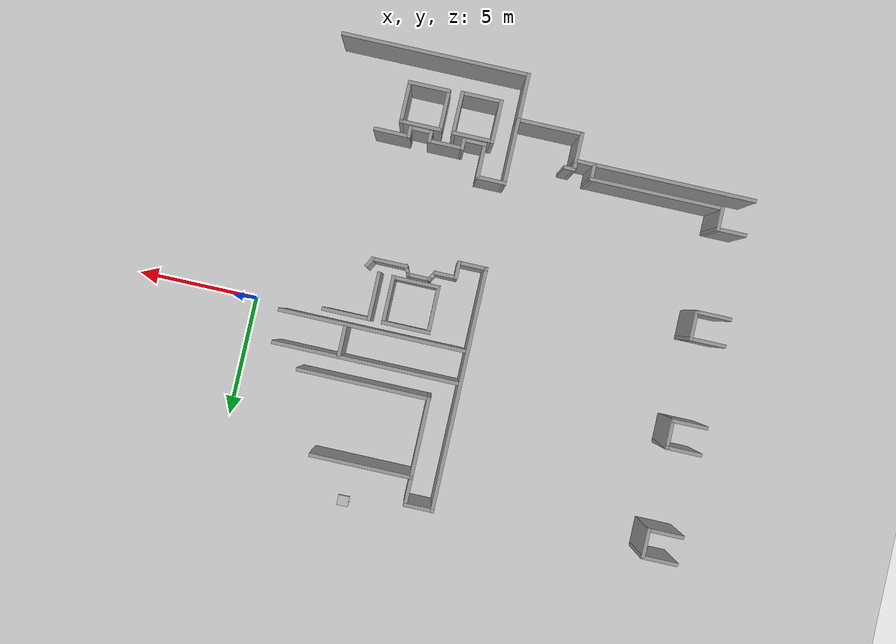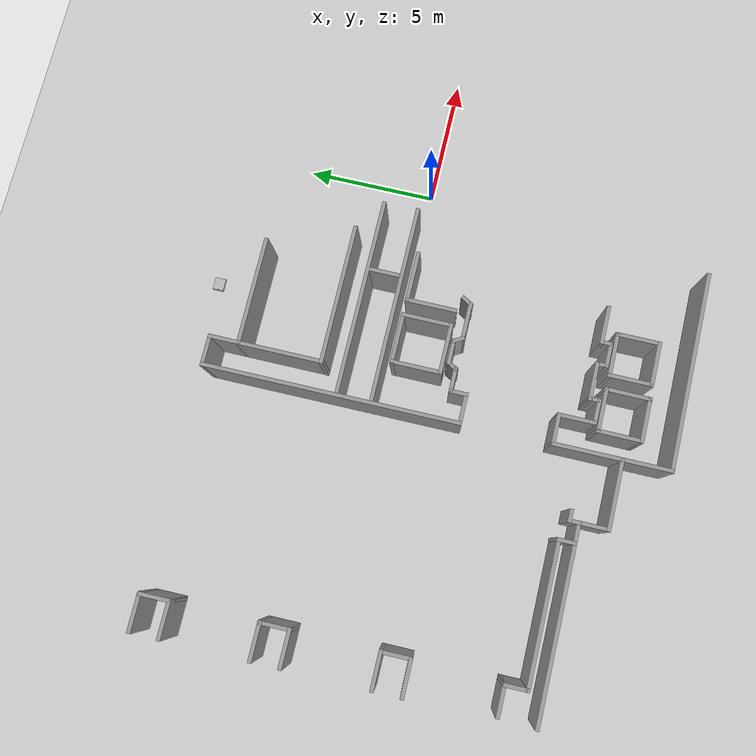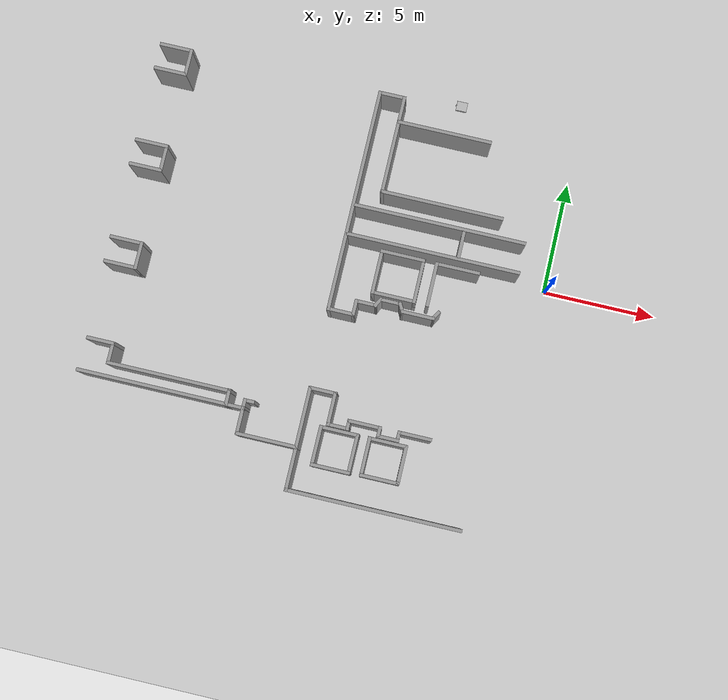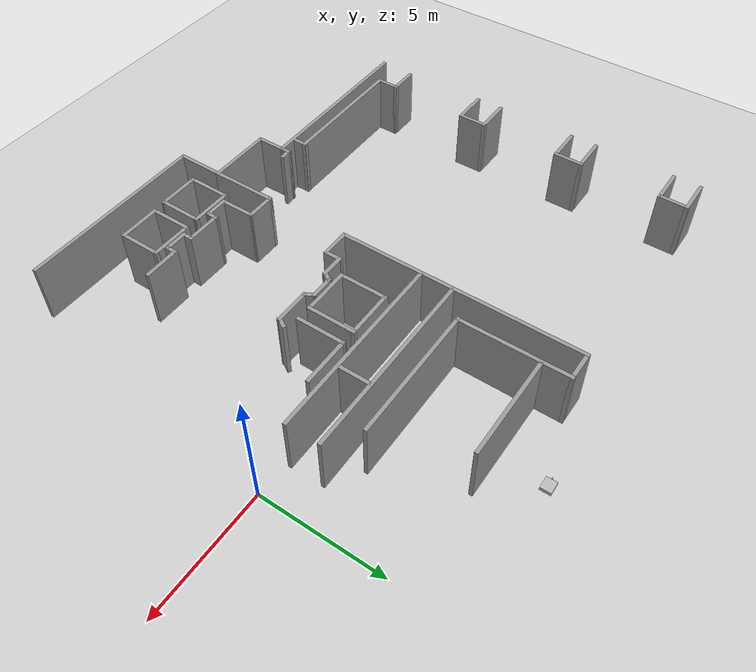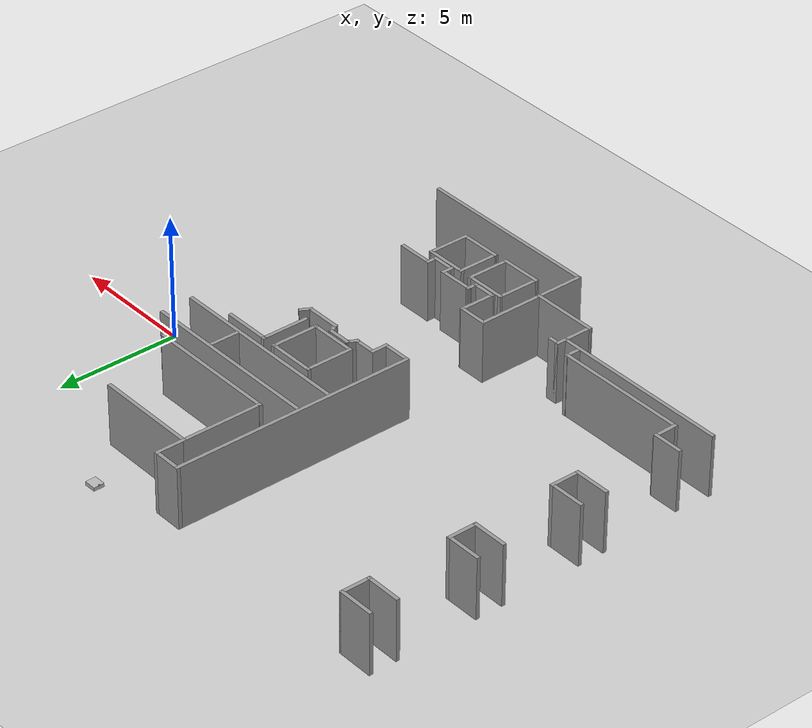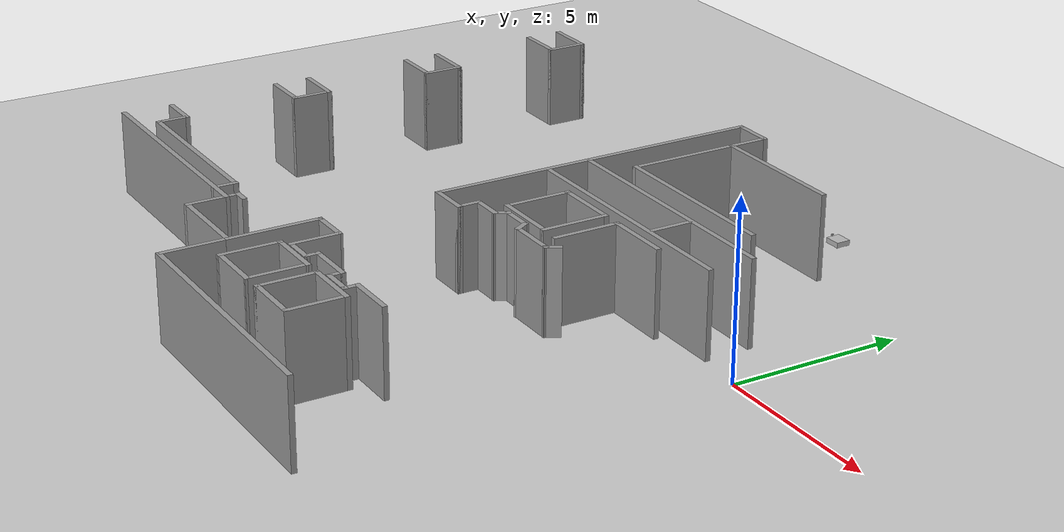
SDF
<sdf version="1.7">
 <world name="default">
  <model name="ground_plane">
   <static>1</static>
   <link name="link">
    <collision name="collision">
     <geometry><plane><normal>0 0 1</normal><size>100 100</size></plane></geometry>
     <surface>
      <contact><collide_bitmask>65535</collide_bitmask></contact>
      <friction><ode><mu>100</mu><mu2>50</mu2></ode></friction>
     </surface>
    </collision>
    <visual name="visual">
     <cast_shadows>0</cast_shadows>
     <geometry><plane><normal>0 0 1</normal><size>100 100</size></plane></geometry>
     <material>
      <script><uri>file://media/materials/scripts/gazebo.material</uri><name>Gazebo/Grey</name></script>
     </material>
    </visual>
   </link>
  </model>
  <model name="Tsudanuma_2-3-without_door">
   <pose>11.8595 12.3796 0 0 -0 0</pose>
   <link name="Wall_1">
    <collision name="Wall_1_Collision">
     <geometry><box><size>7.45363 0.15 2.5</size></box></geometry>
     <pose>0 0 1.25 0 -0 0</pose>
    </collision>
    <visual name="Wall_1_Visual">
     <pose>0 0 1.25 0 -0 0</pose>
     <geometry><box><size>7.45363 0.15 2.5</size></box></geometry>
     <material>
      <script><uri>file://media/materials/scripts/gazebo.material</uri><name>Gazebo/Grey</name></script>
      <ambient>1 1 1 1</ambient>
     </material>
     <meta><layer>0</layer></meta>
    </visual>
    <pose>-27.1739 -20.5586 0 0 -0 -0.00039</pose>
   </link>
   <link name="Wall_140">
    <collision name="Wall_140_Collision">
     <geometry><box><size>4.25 0.15 2.5</size></box></geometry>
     <pose>0 0 1.25 0 -0 0</pose>
    </collision>
    <visual name="Wall_140_Visual">
     <pose>0 0 1.25 0 -0 0</pose>
     <geometry><box><size>4.25 0.15 2.5</size></box></geometry>
     <material>
      <script><uri>file://media/materials/scripts/gazebo.material</uri><name>Gazebo/Grey</name></script>
      <ambient>1 1 1 1</ambient>
     </material>
     <meta><layer>0</layer></meta>
    </visual>
    <pose>-17.8074 -6.80767 0 0 -0 3.14159</pose>
   </link>
   <link name="Wall_141">
    <collision name="Wall_141_Collision">
     <geometry><box><size>1.25 0.15 2.5</size></box></geometry>
     <pose>0 0 1.25 0 -0 0</pose>
    </collision>
    <visual name="Wall_141_Visual">
     <pose>0 0 1.25 0 -0 0</pose>
     <geometry><box><size>1.25 0.15 2.5</size></box></geometry>
     <material>
      <script><uri>file://media/materials/scripts/gazebo.material</uri><name>Gazebo/Grey</name></script>
      <ambient>1 1 1 1</ambient>
     </material>
     <meta><layer>0</layer></meta>
    </visual>
    <pose>-19.8574 -6.25767 0 0 -0 1.5708</pose>
   </link>
   <link name="Wall_142">
    <collision name="Wall_142_Collision">
     <geometry><box><size>1.25 0.15 2.5</size></box></geometry>
     <pose>0 0 1.25 0 -0 0</pose>
    </collision>
    <visual name="Wall_142_Visual">
     <pose>0 0 1.25 0 -0 0</pose>
     <geometry><box><size>1.25 0.15 2.5</size></box></geometry>
     <material>
      <script><uri>file://media/materials/scripts/gazebo.material</uri><name>Gazebo/Grey</name></script>
      <ambient>1 1 1 1</ambient>
     </material>
     <meta><layer>0</layer></meta>
    </visual>
    <pose>-20.4074 -5.70767 0 0 -0 3.14159</pose>
   </link>
   <link name="Wall_143">
    <collision name="Wall_143_Collision">
     <geometry><box><size>10 0.15 2.5</size></box></geometry>
     <pose>0 0 1.25 0 -0 0</pose>
    </collision>
    <visual name="Wall_143_Visual">
     <pose>0 0 1.25 0 -0 0</pose>
     <geometry><box><size>10 0.15 2.5</size></box></geometry>
     <material>
      <script><uri>file://media/materials/scripts/gazebo.material</uri><name>Gazebo/Grey</name></script>
      <ambient>1 1 1 1</ambient>
     </material>
     <meta><layer>0</layer></meta>
    </visual>
    <pose>-20.9574 -10.6327 0 0 -0 -1.5708</pose>
   </link>
   <link name="Wall_144">
    <collision name="Wall_144_Collision">
     <geometry><box><size>1.25 0.15 2.5</size></box></geometry>
     <pose>0 0 1.25 0 -0 0</pose>
    </collision>
    <visual name="Wall_144_Visual">
     <pose>0 0 1.25 0 -0 0</pose>
     <geometry><box><size>1.25 0.15 2.5</size></box></geometry>
     <material>
      <script><uri>file://media/materials/scripts/gazebo.material</uri><name>Gazebo/Grey</name></script>
      <ambient>1 1 1 1</ambient>
     </material>
     <meta><layer>0</layer></meta>
    </visual>
    <pose>-20.4074 -15.5577 0 0 -0 0</pose>
   </link>
   <link name="Wall_145">
    <collision name="Wall_145_Collision">
     <geometry><box><size>0.75 0.15 2.5</size></box></geometry>
     <pose>0 0 1.25 0 -0 0</pose>
    </collision>
    <visual name="Wall_145_Visual">
     <pose>0 0 1.25 0 -0 0</pose>
     <geometry><box><size>0.75 0.15 2.5</size></box></geometry>
     <material>
      <script><uri>file://media/materials/scripts/gazebo.material</uri><name>Gazebo/Grey</name></script>
      <ambient>1 1 1 1</ambient>
     </material>
     <meta><layer>0</layer></meta>
    </visual>
    <pose>-19.8574 -15.2577 0 0 -0 1.5708</pose>
   </link>
   <link name="Wall_146">
    <collision name="Wall_146_Collision">
     <geometry><box><size>1 0.15 2.5</size></box></geometry>
     <pose>0 0 1.25 0 -0 0</pose>
    </collision>
    <visual name="Wall_146_Visual">
     <pose>0 0 1.25 0 -0 0</pose>
     <geometry><box><size>1 0.15 2.5</size></box></geometry>
     <material>
      <script><uri>file://media/materials/scripts/gazebo.material</uri><name>Gazebo/Grey</name></script>
      <ambient>1 1 1 1</ambient>
     </material>
     <meta><layer>0</layer></meta>
    </visual>
    <pose>-19.4324 -14.9577 0 0 -0 0</pose>
   </link>
   <link name="Wall_147">
    <collision name="Wall_147_Collision">
     <geometry><box><size>0.5 0.15 2.5</size></box></geometry>
     <pose>0 0 1.25 0 -0 0</pose>
    </collision>
    <visual name="Wall_147_Visual">
     <pose>0 0 1.25 0 -0 0</pose>
     <geometry><box><size>0.5 0.15 2.5</size></box></geometry>
     <material>
      <script><uri>file://media/materials/scripts/gazebo.material</uri><name>Gazebo/Grey</name></script>
      <ambient>1 1 1 1</ambient>
     </material>
     <meta><layer>0</layer></meta>
    </visual>
    <pose>-18.9199 -14.8061 0 0 -0 1.0472</pose>
   </link>
   <link name="Wall_148">
    <collision name="Wall_148_Collision">
     <geometry><box><size>1 0.15 2.5</size></box></geometry>
     <pose>0 0 1.25 0 -0 0</pose>
    </collision>
    <visual name="Wall_148_Visual">
     <pose>0 0 1.25 0 -0 0</pose>
     <geometry><box><size>1 0.15 2.5</size></box></geometry>
     <material>
      <script><uri>file://media/materials/scripts/gazebo.material</uri><name>Gazebo/Grey</name></script>
      <ambient>1 1 1 1</ambient>
     </material>
     <meta><layer>0</layer></meta>
    </visual>
    <pose>-18.4074 -14.6546 0 0 -0 0</pose>
   </link>
   <link name="Wall_149">
    <collision name="Wall_149_Collision">
     <geometry><box><size>0.5 0.15 2.5</size></box></geometry>
     <pose>0 0 1.25 0 -0 0</pose>
    </collision>
    <visual name="Wall_149_Visual">
     <pose>0 0 1.25 0 -0 0</pose>
     <geometry><box><size>0.5 0.15 2.5</size></box></geometry>
     <material>
      <script><uri>file://media/materials/scripts/gazebo.material</uri><name>Gazebo/Grey</name></script>
      <ambient>1 1 1 1</ambient>
     </material>
     <meta><layer>0</layer></meta>
    </visual>
    <pose>-17.8949 -14.8061 0 0 -0 -1.0472</pose>
   </link>
   <link name="Wall_150">
    <collision name="Wall_150_Collision">
     <geometry><box><size>1.5 0.15 2.5</size></box></geometry>
     <pose>0 0 1.25 0 -0 0</pose>
    </collision>
    <visual name="Wall_150_Visual">
     <pose>0 0 1.25 0 -0 0</pose>
     <geometry><box><size>1.5 0.15 2.5</size></box></geometry>
     <material>
      <script><uri>file://media/materials/scripts/gazebo.material</uri><name>Gazebo/Grey</name></script>
      <ambient>1 1 1 1</ambient>
     </material>
     <meta><layer>0</layer></meta>
    </visual>
    <pose>-17.1324 -14.9577 0 0 -0 0</pose>
   </link>
   <link name="Wall_151">
    <collision name="Wall_151_Collision">
     <geometry><box><size>0.5 0.15 2.5</size></box></geometry>
     <pose>0 0 1.25 0 -0 0</pose>
    </collision>
    <visual name="Wall_151_Visual">
     <pose>0 0 1.25 0 -0 0</pose>
     <geometry><box><size>0.5 0.15 2.5</size></box></geometry>
     <material>
      <script><uri>file://media/materials/scripts/gazebo.material</uri><name>Gazebo/Grey</name></script>
      <ambient>1 1 1 1</ambient>
     </material>
     <meta><layer>0</layer></meta>
    </visual>
    <pose>-16.3699 -14.8061 0 0 -0 1.0472</pose>
   </link>
   <link name="Wall_160">
    <collision name="Wall_160_Collision">
     <geometry><box><size>5.5 0.15 2.5</size></box></geometry>
     <pose>0 0 1.25 0 -0 0</pose>
    </collision>
    <visual name="Wall_160_Visual">
     <pose>0 0 1.25 0 -0 0</pose>
     <geometry><box><size>5.5 0.15 2.5</size></box></geometry>
     <material>
      <script><uri>file://media/materials/scripts/gazebo.material</uri><name>Gazebo/Grey</name></script>
      <ambient>1 1 1 1</ambient>
     </material>
     <meta><layer>0</layer></meta>
    </visual>
    <pose>-17.1919 -10.0068 0 0 -0 3.14159</pose>
   </link>
   <link name="Wall_161">
    <collision name="Wall_161_Collision">
     <geometry><box><size>3.34921 0.15 2.5</size></box></geometry>
     <pose>0 0 1.25 0 -0 0</pose>
    </collision>
    <visual name="Wall_161_Visual">
     <pose>0 0 1.25 0 -0 0</pose>
     <geometry><box><size>3.34921 0.15 2.5</size></box></geometry>
     <material>
      <script><uri>file://media/materials/scripts/gazebo.material</uri><name>Gazebo/Grey</name></script>
      <ambient>1 1 1 1</ambient>
     </material>
     <meta><layer>0</layer></meta>
    </visual>
    <pose>-19.8574 -8.40721 0 0 -0 1.5708</pose>
   </link>
   <link name="Wall_165">
    <collision name="Wall_165_Collision">
     <geometry><box><size>7.7 0.15 2.5</size></box></geometry>
     <pose>0 0 1.25 0 -0 0</pose>
    </collision>
    <visual name="Wall_165_Visual">
     <pose>0 0 1.25 0 -0 0</pose>
     <geometry><box><size>7.7 0.15 2.5</size></box></geometry>
     <material>
      <script><uri>file://media/materials/scripts/gazebo.material</uri><name>Gazebo/Grey</name></script>
      <ambient>1 1 1 1</ambient>
     </material>
     <meta><layer>0</layer></meta>
    </visual>
    <pose>-17.1019 -10.8525 0 0 -0 0</pose>
   </link>
   <link name="Wall_167">
    <collision name="Wall_167_Collision">
     <geometry><box><size>7.75 0.15 2.5</size></box></geometry>
     <pose>0 0 1.25 0 -0 0</pose>
    </collision>
    <visual name="Wall_167_Visual">
     <pose>0 0 1.25 0 -0 0</pose>
     <geometry><box><size>7.75 0.15 2.5</size></box></geometry>
     <material>
      <script><uri>file://media/materials/scripts/gazebo.material</uri><name>Gazebo/Grey</name></script>
      <ambient>1 1 1 1</ambient>
     </material>
     <meta><layer>0</layer></meta>
    </visual>
    <pose>-17.0935 -12.1708 0 0 -0 0</pose>
   </link>
   <link name="Wall_169">
    <collision name="Wall_169_Collision">
     <geometry><box><size>1.25 0.15 2.5</size></box></geometry>
     <pose>0 0 1.25 0 -0 0</pose>
    </collision>
    <visual name="Wall_169_Visual">
     <pose>0 0 1.25 0 -0 0</pose>
     <geometry><box><size>1.25 0.15 2.5</size></box></geometry>
     <material>
      <script><uri>file://media/materials/scripts/gazebo.material</uri><name>Gazebo/Grey</name></script>
      <ambient>1 1 1 1</ambient>
     </material>
     <meta><layer>0</layer></meta>
    </visual>
    <pose>-15.9785 -11.4951 0 0 -0 -1.5708</pose>
   </link>
   <link name="Wall_176">
    <collision name="Wall_176_Collision">
     <geometry><box><size>2.75 0.15 2.5</size></box></geometry>
     <pose>0 0 1.25 0 -0 0</pose>
    </collision>
    <visual name="Wall_176_Visual">
     <pose>0 0 1.25 0 -0 0</pose>
     <geometry><box><size>2.75 0.15 2.5</size></box></geometry>
     <material>
      <script><uri>file://media/materials/scripts/gazebo.material</uri><name>Gazebo/Grey</name></script>
      <ambient>1 1 1 1</ambient>
     </material>
     <meta><layer>0</layer></meta>
    </visual>
    <pose>-20.9221 -20.36 0 0 -0 1.5708</pose>
   </link>
   <link name="Wall_177">
    <collision name="Wall_177_Collision">
     <geometry><box><size>1.25 0.15 2.5</size></box></geometry>
     <pose>0 0 1.25 0 -0 0</pose>
    </collision>
    <visual name="Wall_177_Visual">
     <pose>0 0 1.25 0 -0 0</pose>
     <geometry><box><size>1.25 0.15 2.5</size></box></geometry>
     <material>
      <script><uri>file://media/materials/scripts/gazebo.material</uri><name>Gazebo/Grey</name></script>
      <ambient>1 1 1 1</ambient>
     </material>
     <meta><layer>0</layer></meta>
    </visual>
    <pose>-20.3721 -19.06 0 0 -0 0</pose>
   </link>
   <link name="Wall_178">
    <collision name="Wall_178_Collision">
     <geometry><box><size>1.49235 0.15 2.5</size></box></geometry>
     <pose>0 0 1.25 0 -0 0</pose>
    </collision>
    <visual name="Wall_178_Visual">
     <pose>0 0 1.25 0 -0 0</pose>
     <geometry><box><size>1.49235 0.15 2.5</size></box></geometry>
     <material>
      <script><uri>file://media/materials/scripts/gazebo.material</uri><name>Gazebo/Grey</name></script>
      <ambient>1 1 1 1</ambient>
     </material>
     <meta><layer>0</layer></meta>
    </visual>
    <pose>-19.8214 -19.7312 0 0 -0 -1.56976</pose>
   </link>
   <link name="Wall_179">
    <collision name="Wall_179_Collision">
     <geometry><box><size>1 0.15 2.5</size></box></geometry>
     <pose>0 0 1.25 0 -0 0</pose>
    </collision>
    <visual name="Wall_179_Visual">
     <pose>0 0 1.25 0 -0 0</pose>
     <geometry><box><size>1 0.15 2.5</size></box></geometry>
     <material>
      <script><uri>file://media/materials/scripts/gazebo.material</uri><name>Gazebo/Grey</name></script>
      <ambient>1 1 1 1</ambient>
     </material>
     <meta><layer>0</layer></meta>
    </visual>
    <pose>-19.3957 -20.4038 0 0 -0 0</pose>
   </link>
   <link name="Wall_180">
    <collision name="Wall_180_Collision">
     <geometry><box><size>0.492355 0.15 2.5</size></box></geometry>
     <pose>0 0 1.25 0 -0 0</pose>
    </collision>
    <visual name="Wall_180_Visual">
     <pose>0 0 1.25 0 -0 0</pose>
     <geometry><box><size>0.492355 0.15 2.5</size></box></geometry>
     <material>
      <script><uri>file://media/materials/scripts/gazebo.material</uri><name>Gazebo/Grey</name></script>
      <ambient>1 1 1 1</ambient>
     </material>
     <meta><layer>0</layer></meta>
    </visual>
    <pose>-18.9714 -20.2312 0 0 -0 1.57485</pose>
   </link>
   <link name="Wall_181">
    <collision name="Wall_181_Collision">
     <geometry><box><size>1.5 0.15 2.5</size></box></geometry>
     <pose>0 0 1.25 0 -0 0</pose>
    </collision>
    <visual name="Wall_181_Visual">
     <pose>0 0 1.25 0 -0 0</pose>
     <geometry><box><size>1.5 0.15 2.5</size></box></geometry>
     <material>
      <script><uri>file://media/materials/scripts/gazebo.material</uri><name>Gazebo/Grey</name></script>
      <ambient>1 1 1 1</ambient>
     </material>
     <meta><layer>0</layer></meta>
    </visual>
    <pose>-18.2971 -20.06 0 0 -0 0</pose>
   </link>
   <link name="Wall_182">
    <collision name="Wall_182_Collision">
     <geometry><box><size>0.502135 0.15 2.5</size></box></geometry>
     <pose>0 0 1.25 0 -0 0</pose>
    </collision>
    <visual name="Wall_182_Visual">
     <pose>0 0 1.25 0 -0 0</pose>
     <geometry><box><size>0.502135 0.15 2.5</size></box></geometry>
     <material>
      <script><uri>file://media/materials/scripts/gazebo.material</uri><name>Gazebo/Grey</name></script>
      <ambient>1 1 1 1</ambient>
     </material>
     <meta><layer>0</layer></meta>
    </visual>
    <pose>-17.6221 -20.2361 0 0 -0 -1.5708</pose>
   </link>
   <link name="Wall_183">
    <collision name="Wall_183_Collision">
     <geometry><box><size>1 0.15 2.5</size></box></geometry>
     <pose>0 0 1.25 0 -0 0</pose>
    </collision>
    <visual name="Wall_183_Visual">
     <pose>0 0 1.25 0 -0 0</pose>
     <geometry><box><size>1 0.15 2.5</size></box></geometry>
     <material>
      <script><uri>file://media/materials/scripts/gazebo.material</uri><name>Gazebo/Grey</name></script>
      <ambient>1 1 1 1</ambient>
     </material>
     <meta><layer>0</layer></meta>
    </visual>
    <pose>-17.1985 -20.4122 0 0 -0 0</pose>
   </link>
   <link name="Wall_184">
    <collision name="Wall_184_Collision">
     <geometry><box><size>0.502135 0.15 2.5</size></box></geometry>
     <pose>0 0 1.25 0 -0 0</pose>
    </collision>
    <visual name="Wall_184_Visual">
     <pose>0 0 1.25 0 -0 0</pose>
     <geometry><box><size>0.502135 0.15 2.5</size></box></geometry>
     <material>
      <script><uri>file://media/materials/scripts/gazebo.material</uri><name>Gazebo/Grey</name></script>
      <ambient>1 1 1 1</ambient>
     </material>
     <meta><layer>0</layer></meta>
    </visual>
    <pose>-16.7721 -20.2361 0 0 -0 1.5708</pose>
   </link>
   <link name="Wall_185">
    <collision name="Wall_185_Collision">
     <geometry><box><size>1.5 0.15 2.5</size></box></geometry>
     <pose>0 0 1.25 0 -0 0</pose>
    </collision>
    <visual name="Wall_185_Visual">
     <pose>0 0 1.25 0 -0 0</pose>
     <geometry><box><size>1.5 0.15 2.5</size></box></geometry>
     <material>
      <script><uri>file://media/materials/scripts/gazebo.material</uri><name>Gazebo/Grey</name></script>
      <ambient>1 1 1 1</ambient>
     </material>
     <meta><layer>0</layer></meta>
    </visual>
    <pose>-16.0971 -20.06 0 0 -0 0</pose>
   </link>
   <link name="Wall_2">
    <collision name="Wall_2_Collision">
     <geometry><box><size>1.25 0.15 2.5</size></box></geometry>
     <pose>0 0 1.25 0 -0 0</pose>
    </collision>
    <visual name="Wall_2_Visual">
     <pose>0 0 1.25 0 -0 0</pose>
     <geometry><box><size>1.25 0.15 2.5</size></box></geometry>
     <material>
      <script><uri>file://media/materials/scripts/gazebo.material</uri><name>Gazebo/Grey</name></script>
      <ambient>1 1 1 1</ambient>
     </material>
     <meta><layer>0</layer></meta>
    </visual>
    <pose>-23.5221 -21.11 0 0 -0 -1.5708</pose>
   </link>
   <link name="Wall_28">
    <collision name="Wall_28_Collision">
     <geometry><box><size>0.5 0.15 2.5</size></box></geometry>
     <pose>0 0 1.25 0 -0 0</pose>
    </collision>
    <visual name="Wall_28_Visual">
     <pose>0 0 1.25 0 -0 0</pose>
     <geometry><box><size>0.5 0.15 2.5</size></box></geometry>
     <material>
      <script><uri>file://media/materials/scripts/gazebo.material</uri><name>Gazebo/Grey</name></script>
      <ambient>1 1 1 1</ambient>
     </material>
     <meta><layer>0</layer></meta>
    </visual>
    <pose>-23.5221 -20.385 0 0 -0 1.5708</pose>
   </link>
   <link name="Wall_29">
    <collision name="Wall_29_Collision">
     <geometry><box><size>0.5 0.15 2.5</size></box></geometry>
     <pose>0 0 1.25 0 -0 0</pose>
    </collision>
    <visual name="Wall_29_Visual">
     <pose>0 0 1.25 0 -0 0</pose>
     <geometry><box><size>0.5 0.15 2.5</size></box></geometry>
     <material>
      <script><uri>file://media/materials/scripts/gazebo.material</uri><name>Gazebo/Grey</name></script>
      <ambient>1 1 1 1</ambient>
     </material>
     <meta><layer>0</layer></meta>
    </visual>
    <pose>-23.3471 -20.21 0 0 -0 0</pose>
   </link>
   <link name="Wall_3">
    <collision name="Wall_3_Collision">
     <geometry><box><size>2.75 0.15 2.5</size></box></geometry>
     <pose>0 0 1.25 0 -0 0</pose>
    </collision>
    <visual name="Wall_3_Visual">
     <pose>0 0 1.25 0 -0 0</pose>
     <geometry><box><size>2.75 0.15 2.5</size></box></geometry>
     <material>
      <script><uri>file://media/materials/scripts/gazebo.material</uri><name>Gazebo/Grey</name></script>
      <ambient>1 1 1 1</ambient>
     </material>
     <meta><layer>0</layer></meta>
    </visual>
    <pose>-22.2221 -21.66 0 0 -0 0</pose>
   </link>
   <link name="Wall_4">
    <collision name="Wall_4_Collision">
     <geometry><box><size>2 0.15 2.5</size></box></geometry>
     <pose>0 0 1.25 0 -0 0</pose>
    </collision>
    <visual name="Wall_4_Visual">
     <pose>0 0 1.25 0 -0 0</pose>
     <geometry><box><size>2 0.15 2.5</size></box></geometry>
     <material>
      <script><uri>file://media/materials/scripts/gazebo.material</uri><name>Gazebo/Grey</name></script>
      <ambient>1 1 1 1</ambient>
     </material>
     <meta><layer>0</layer></meta>
    </visual>
    <pose>-20.9221 -22.585 0 0 -0 -1.5708</pose>
   </link>
   <link name="Wall_451">
    <collision name="Wall_451_Collision">
     <geometry><box><size>0.75 0.15 2.5</size></box></geometry>
     <pose>0 0 1.25 0 -0 0</pose>
    </collision>
    <visual name="Wall_451_Visual">
     <pose>0 0 1.25 0 -0 0</pose>
     <geometry><box><size>0.75 0.15 2.5</size></box></geometry>
     <material>
      <script><uri>file://media/materials/scripts/gazebo.material</uri><name>Gazebo/Grey</name></script>
      <ambient>1 1 1 1</ambient>
     </material>
     <meta><layer>0</layer></meta>
    </visual>
    <pose>-24.2755 -20.2618 0 0 -0 1.5708</pose>
   </link>
   <link name="Wall_452">
    <collision name="Wall_452_Collision">
     <geometry><box><size>5.51306 0.15 2.5</size></box></geometry>
     <pose>0 0 1.25 0 -0 0</pose>
    </collision>
    <visual name="Wall_452_Visual">
     <pose>0 0 1.25 0 -0 0</pose>
     <geometry><box><size>5.51306 0.15 2.5</size></box></geometry>
     <material>
      <script><uri>file://media/materials/scripts/gazebo.material</uri><name>Gazebo/Grey</name></script>
      <ambient>1 1 1 1</ambient>
     </material>
     <meta><layer>0</layer></meta>
    </visual>
    <pose>-26.9569 -19.9746 0 0 -0 -3.14159</pose>
   </link>
   <link name="Wall_453">
    <collision name="Wall_453_Collision">
     <geometry><box><size>1 0.15 2.5</size></box></geometry>
     <pose>0 0 1.25 0 -0 0</pose>
    </collision>
    <visual name="Wall_453_Visual">
     <pose>0 0 1.25 0 -0 0</pose>
     <geometry><box><size>1 0.15 2.5</size></box></geometry>
     <material>
      <script><uri>file://media/materials/scripts/gazebo.material</uri><name>Gazebo/Grey</name></script>
      <ambient>1 1 1 1</ambient>
     </material>
     <meta><layer>0</layer></meta>
    </visual>
    <pose>-29.6383 -19.5496 0 0 -0 1.5708</pose>
   </link>
   <link name="Wall_454">
    <collision name="Wall_454_Collision">
     <geometry><box><size>1.25 0.15 2.5</size></box></geometry>
     <pose>0 0 1.25 0 -0 0</pose>
    </collision>
    <visual name="Wall_454_Visual">
     <pose>0 0 1.25 0 -0 0</pose>
     <geometry><box><size>1.25 0.15 2.5</size></box></geometry>
     <material>
      <script><uri>file://media/materials/scripts/gazebo.material</uri><name>Gazebo/Grey</name></script>
      <ambient>1 1 1 1</ambient>
     </material>
     <meta><layer>0</layer></meta>
    </visual>
    <pose>-30.1883 -19.1246 0 0 -0 3.14159</pose>
   </link>
   <link name="Wall_456">
    <collision name="Wall_456_Collision">
     <geometry><box><size>1.5 0.15 2.5</size></box></geometry>
     <pose>0 0 1.25 0 -0 0</pose>
    </collision>
    <visual name="Wall_456_Visual">
     <pose>0 0 1.25 0 -0 0</pose>
     <geometry><box><size>1.5 0.15 2.5</size></box></geometry>
     <material>
      <script><uri>file://media/materials/scripts/gazebo.material</uri><name>Gazebo/Grey</name></script>
      <ambient>1 1 1 1</ambient>
     </material>
     <meta><layer>0</layer></meta>
    </visual>
    <pose>-30.1953 -15.7191 0 0 -0 0</pose>
   </link>
   <link name="Wall_457">
    <collision name="Wall_457_Collision">
     <geometry><box><size>1.25 0.15 2.5</size></box></geometry>
     <pose>0 0 1.25 0 -0 0</pose>
    </collision>
    <visual name="Wall_457_Visual">
     <pose>0 0 1.25 0 -0 0</pose>
     <geometry><box><size>1.25 0.15 2.5</size></box></geometry>
     <material>
      <script><uri>file://media/materials/scripts/gazebo.material</uri><name>Gazebo/Grey</name></script>
      <ambient>1 1 1 1</ambient>
     </material>
     <meta><layer>0</layer></meta>
    </visual>
    <pose>-29.5203 -15.1691 0 0 -0 1.5708</pose>
   </link>
   <link name="Wall_458">
    <collision name="Wall_458_Collision">
     <geometry><box><size>1.5 0.15 2.5</size></box></geometry>
     <pose>0 0 1.25 0 -0 0</pose>
    </collision>
    <visual name="Wall_458_Visual">
     <pose>0 0 1.25 0 -0 0</pose>
     <geometry><box><size>1.5 0.15 2.5</size></box></geometry>
     <material>
      <script><uri>file://media/materials/scripts/gazebo.material</uri><name>Gazebo/Grey</name></script>
      <ambient>1 1 1 1</ambient>
     </material>
     <meta><layer>0</layer></meta>
    </visual>
    <pose>-30.1953 -14.6191 0 0 -0 3.14159</pose>
   </link>
   <link name="Wall_460">
    <collision name="Wall_460_Collision">
     <geometry><box><size>1.5 0.15 2.5</size></box></geometry>
     <pose>0 0 1.25 0 -0 0</pose>
    </collision>
    <visual name="Wall_460_Visual">
     <pose>0 0 1.25 0 -0 0</pose>
     <geometry><box><size>1.5 0.15 2.5</size></box></geometry>
     <material>
      <script><uri>file://media/materials/scripts/gazebo.material</uri><name>Gazebo/Grey</name></script>
      <ambient>1 1 1 1</ambient>
     </material>
     <meta><layer>0</layer></meta>
    </visual>
    <pose>-30.1953 -11.2881 0 0 -0 0</pose>
   </link>
   <link name="Wall_461">
    <collision name="Wall_461_Collision">
     <geometry><box><size>1.25 0.15 2.5</size></box></geometry>
     <pose>0 0 1.25 0 -0 0</pose>
    </collision>
    <visual name="Wall_461_Visual">
     <pose>0 0 1.25 0 -0 0</pose>
     <geometry><box><size>1.25 0.15 2.5</size></box></geometry>
     <material>
      <script><uri>file://media/materials/scripts/gazebo.material</uri><name>Gazebo/Grey</name></script>
      <ambient>1 1 1 1</ambient>
     </material>
     <meta><layer>0</layer></meta>
    </visual>
    <pose>-29.5203 -10.7381 0 0 -0 1.5708</pose>
   </link>
   <link name="Wall_462">
    <collision name="Wall_462_Collision">
     <geometry><box><size>1.5 0.15 2.5</size></box></geometry>
     <pose>0 0 1.25 0 -0 0</pose>
    </collision>
    <visual name="Wall_462_Visual">
     <pose>0 0 1.25 0 -0 0</pose>
     <geometry><box><size>1.5 0.15 2.5</size></box></geometry>
     <material>
      <script><uri>file://media/materials/scripts/gazebo.material</uri><name>Gazebo/Grey</name></script>
      <ambient>1 1 1 1</ambient>
     </material>
     <meta><layer>0</layer></meta>
    </visual>
    <pose>-30.1953 -10.1881 0 0 -0 3.14159</pose>
   </link>
   <link name="Wall_464">
    <collision name="Wall_464_Collision">
     <geometry><box><size>1.5 0.15 2.5</size></box></geometry>
     <pose>0 0 1.25 0 -0 0</pose>
    </collision>
    <visual name="Wall_464_Visual">
     <pose>0 0 1.25 0 -0 0</pose>
     <geometry><box><size>1.5 0.15 2.5</size></box></geometry>
     <material>
      <script><uri>file://media/materials/scripts/gazebo.material</uri><name>Gazebo/Grey</name></script>
      <ambient>1 1 1 1</ambient>
     </material>
     <meta><layer>0</layer></meta>
    </visual>
    <pose>-30.1953 -6.84893 0 0 -0 0</pose>
   </link>
   <link name="Wall_465">
    <collision name="Wall_465_Collision">
     <geometry><box><size>1.25 0.15 2.5</size></box></geometry>
     <pose>0 0 1.25 0 -0 0</pose>
    </collision>
    <visual name="Wall_465_Visual">
     <pose>0 0 1.25 0 -0 0</pose>
     <geometry><box><size>1.25 0.15 2.5</size></box></geometry>
     <material>
      <script><uri>file://media/materials/scripts/gazebo.material</uri><name>Gazebo/Grey</name></script>
      <ambient>1 1 1 1</ambient>
     </material>
     <meta><layer>0</layer></meta>
    </visual>
    <pose>-29.5203 -6.29893 0 0 -0 1.5708</pose>
   </link>
   <link name="Wall_466">
    <collision name="Wall_466_Collision">
     <geometry><box><size>1.5 0.15 2.5</size></box></geometry>
     <pose>0 0 1.25 0 -0 0</pose>
    </collision>
    <visual name="Wall_466_Visual">
     <pose>0 0 1.25 0 -0 0</pose>
     <geometry><box><size>1.5 0.15 2.5</size></box></geometry>
     <material>
      <script><uri>file://media/materials/scripts/gazebo.material</uri><name>Gazebo/Grey</name></script>
      <ambient>1 1 1 1</ambient>
     </material>
     <meta><layer>0</layer></meta>
    </visual>
    <pose>-30.1953 -5.74893 0 0 -0 3.14159</pose>
   </link>
   <link name="Wall_5">
    <collision name="Wall_5_Collision">
     <geometry><box><size>7.75 0.15 2.5</size></box></geometry>
     <pose>0 0 1.25 0 -0 0</pose>
    </collision>
    <visual name="Wall_5_Visual">
     <pose>0 0 1.25 0 -0 0</pose>
     <geometry><box><size>7.75 0.15 2.5</size></box></geometry>
     <material>
      <script><uri>file://media/materials/scripts/gazebo.material</uri><name>Gazebo/Grey</name></script>
      <ambient>1 1 1 1</ambient>
     </material>
     <meta><layer>0</layer></meta>
    </visual>
    <pose>-17.1221 -23.51 0 0 -0 0</pose>
   </link>
   <link name="Wall_539">
    <collision name="Wall_539_Collision">
     <geometry><box><size>2 0.15 2.5</size></box></geometry>
     <pose>0 0 1.25 0 -0 0</pose>
    </collision>
    <visual name="Wall_539_Visual">
     <pose>0 0 1.25 0 -0 0</pose>
     <geometry><box><size>2 0.15 2.5</size></box></geometry>
     <material>
      <script><uri>file://media/materials/scripts/gazebo.material</uri><name>Gazebo/Grey</name></script>
      <ambient>1 1 1 1</ambient>
     </material>
     <meta><layer>0</layer></meta>
    </visual>
    <pose>-18.3408 -14.4242 0 0 -0 0</pose>
   </link>
   <link name="Wall_540">
    <collision name="Wall_540_Collision">
     <geometry><box><size>2 0.15 2.5</size></box></geometry>
     <pose>0 0 1.25 0 -0 0</pose>
    </collision>
    <visual name="Wall_540_Visual">
     <pose>0 0 1.25 0 -0 0</pose>
     <geometry><box><size>2 0.15 2.5</size></box></geometry>
     <material>
      <script><uri>file://media/materials/scripts/gazebo.material</uri><name>Gazebo/Grey</name></script>
      <ambient>1 1 1 1</ambient>
     </material>
     <meta><layer>0</layer></meta>
    </visual>
    <pose>-17.4158 -13.4992 0 0 -0 1.5708</pose>
   </link>
   <link name="Wall_541">
    <collision name="Wall_541_Collision">
     <geometry><box><size>2 0.15 2.5</size></box></geometry>
     <pose>0 0 1.25 0 -0 0</pose>
    </collision>
    <visual name="Wall_541_Visual">
     <pose>0 0 1.25 0 -0 0</pose>
     <geometry><box><size>2 0.15 2.5</size></box></geometry>
     <material>
      <script><uri>file://media/materials/scripts/gazebo.material</uri><name>Gazebo/Grey</name></script>
      <ambient>1 1 1 1</ambient>
     </material>
     <meta><layer>0</layer></meta>
    </visual>
    <pose>-18.3408 -12.5742 0 0 -0 3.14159</pose>
   </link>
   <link name="Wall_542">
    <collision name="Wall_542_Collision">
     <geometry><box><size>2 0.15 2.5</size></box></geometry>
     <pose>0 0 1.25 0 -0 0</pose>
    </collision>
    <visual name="Wall_542_Visual">
     <pose>0 0 1.25 0 -0 0</pose>
     <geometry><box><size>2 0.15 2.5</size></box></geometry>
     <material>
      <script><uri>file://media/materials/scripts/gazebo.material</uri><name>Gazebo/Grey</name></script>
      <ambient>1 1 1 1</ambient>
     </material>
     <meta><layer>0</layer></meta>
    </visual>
    <pose>-19.2658 -13.4992 0 0 -0 -1.5708</pose>
   </link>
   <link name="Wall_544">
    <collision name="Wall_544_Collision">
     <geometry><box><size>2 0.15 2.5</size></box></geometry>
     <pose>0 0 1.25 0 -0 0</pose>
    </collision>
    <visual name="Wall_544_Visual">
     <pose>0 0 1.25 0 -0 0</pose>
     <geometry><box><size>2 0.15 2.5</size></box></geometry>
     <material>
      <script><uri>file://media/materials/scripts/gazebo.material</uri><name>Gazebo/Grey</name></script>
      <ambient>1 1 1 1</ambient>
     </material>
     <meta><layer>0</layer></meta>
    </visual>
    <pose>-16.8289 -13.509 0 0 -0 1.5708</pose>
   </link>
   <link name="Wall_545">
    <collision name="Wall_545_Collision">
     <geometry><box><size>2 0.15 2.5</size></box></geometry>
     <pose>0 0 1.25 0 -0 0</pose>
    </collision>
    <visual name="Wall_545_Visual">
     <pose>0 0 1.25 0 -0 0</pose>
     <geometry><box><size>2 0.15 2.5</size></box></geometry>
     <material>
      <script><uri>file://media/materials/scripts/gazebo.material</uri><name>Gazebo/Grey</name></script>
      <ambient>1 1 1 1</ambient>
     </material>
     <meta><layer>0</layer></meta>
    </visual>
    <pose>-15.9039 -12.584 0 0 -0 0</pose>
   </link>
   <link name="Wall_549">
    <collision name="Wall_549_Collision">
     <geometry><box><size>1.75 0.15 2.5</size></box></geometry>
     <pose>0 0 1.25 0 -0 0</pose>
    </collision>
    <visual name="Wall_549_Visual">
     <pose>0 0 1.25 0 -0 0</pose>
     <geometry><box><size>1.75 0.15 2.5</size></box></geometry>
     <material>
      <script><uri>file://media/materials/scripts/gazebo.material</uri><name>Gazebo/Grey</name></script>
      <ambient>1 1 1 1</ambient>
     </material>
     <meta><layer>0</layer></meta>
    </visual>
    <pose>-19.286 -20.5805 0 0 -0 0</pose>
   </link>
   <link name="Wall_550">
    <collision name="Wall_550_Collision">
     <geometry><box><size>1.79461 0.15 2.5</size></box></geometry>
     <pose>0 0 1.25 0 -0 0</pose>
    </collision>
    <visual name="Wall_550_Visual">
     <pose>0 0 1.25 0 -0 0</pose>
     <geometry><box><size>1.79461 0.15 2.5</size></box></geometry>
     <material>
      <script><uri>file://media/materials/scripts/gazebo.material</uri><name>Gazebo/Grey</name></script>
      <ambient>1 1 1 1</ambient>
     </material>
     <meta><layer>0</layer></meta>
    </visual>
    <pose>-18.4901 -21.4014 0 0 -0 -1.57588</pose>
   </link>
   <link name="Wall_551">
    <collision name="Wall_551_Collision">
     <geometry><box><size>1.75 0.15 2.5</size></box></geometry>
     <pose>0 0 1.25 0 -0 0</pose>
    </collision>
    <visual name="Wall_551_Visual">
     <pose>0 0 1.25 0 -0 0</pose>
     <geometry><box><size>1.75 0.15 2.5</size></box></geometry>
     <material>
      <script><uri>file://media/materials/scripts/gazebo.material</uri><name>Gazebo/Grey</name></script>
      <ambient>1 1 1 1</ambient>
     </material>
     <meta><layer>0</layer></meta>
    </visual>
    <pose>-19.2943 -22.2237 0 0 -0 3.14159</pose>
   </link>
   <link name="Wall_552">
    <collision name="Wall_552_Collision">
     <geometry><box><size>1.79461 0.15 2.5</size></box></geometry>
     <pose>0 0 1.25 0 -0 0</pose>
    </collision>
    <visual name="Wall_552_Visual">
     <pose>0 0 1.25 0 -0 0</pose>
     <geometry><box><size>1.79461 0.15 2.5</size></box></geometry>
     <material>
      <script><uri>file://media/materials/scripts/gazebo.material</uri><name>Gazebo/Grey</name></script>
      <ambient>1 1 1 1</ambient>
     </material>
     <meta><layer>0</layer></meta>
    </visual>
    <pose>-20.0901 -21.4014 0 0 -0 1.56571</pose>
   </link>
   <link name="Wall_554">
    <collision name="Wall_554_Collision">
     <geometry><box><size>1.75 0.15 2.5</size></box></geometry>
     <pose>0 0 1.25 0 -0 0</pose>
    </collision>
    <visual name="Wall_554_Visual">
     <pose>0 0 1.25 0 -0 0</pose>
     <geometry><box><size>1.75 0.15 2.5</size></box></geometry>
     <material>
      <script><uri>file://media/materials/scripts/gazebo.material</uri><name>Gazebo/Grey</name></script>
      <ambient>1 1 1 1</ambient>
     </material>
     <meta><layer>0</layer></meta>
    </visual>
    <pose>-17.1499 -22.1833 0 0 -0 0</pose>
   </link>
   <link name="Wall_555">
    <collision name="Wall_555_Collision">
     <geometry><box><size>1.75 0.15 2.5</size></box></geometry>
     <pose>0 0 1.25 0 -0 0</pose>
    </collision>
    <visual name="Wall_555_Visual">
     <pose>0 0 1.25 0 -0 0</pose>
     <geometry><box><size>1.75 0.15 2.5</size></box></geometry>
     <material>
      <script><uri>file://media/materials/scripts/gazebo.material</uri><name>Gazebo/Grey</name></script>
      <ambient>1 1 1 1</ambient>
     </material>
     <meta><layer>0</layer></meta>
    </visual>
    <pose>-16.3499 -21.3833 0 0 -0 1.5708</pose>
   </link>
   <link name="Wall_556">
    <collision name="Wall_556_Collision">
     <geometry><box><size>1.75 0.15 2.5</size></box></geometry>
     <pose>0 0 1.25 0 -0 0</pose>
    </collision>
    <visual name="Wall_556_Visual">
     <pose>0 0 1.25 0 -0 0</pose>
     <geometry><box><size>1.75 0.15 2.5</size></box></geometry>
     <material>
      <script><uri>file://media/materials/scripts/gazebo.material</uri><name>Gazebo/Grey</name></script>
      <ambient>1 1 1 1</ambient>
     </material>
     <meta><layer>0</layer></meta>
    </visual>
    <pose>-17.1499 -20.5833 0 0 -0 3.14159</pose>
   </link>
   <link name="Wall_557">
    <collision name="Wall_557_Collision">
     <geometry><box><size>1.75 0.15 2.5</size></box></geometry>
     <pose>0 0 1.25 0 -0 0</pose>
    </collision>
    <visual name="Wall_557_Visual">
     <pose>0 0 1.25 0 -0 0</pose>
     <geometry><box><size>1.75 0.15 2.5</size></box></geometry>
     <material>
      <script><uri>file://media/materials/scripts/gazebo.material</uri><name>Gazebo/Grey</name></script>
      <ambient>1 1 1 1</ambient>
     </material>
     <meta><layer>0</layer></meta>
    </visual>
    <pose>-17.9499 -21.3833 0 0 -0 -1.5708</pose>
   </link>
   <static>1</static>
  </model>
  <model name="orne_gamma">
   <pose>-5.46529 7.48938 0.120016 4.2e-05 0.001624 -3.12866</pose>
   <link name="base_footprint">
    <inertial>
     <inertia><ixx>1</ixx><ixy>0</ixy><ixz>0</ixz><iyy>1</iyy><iyz>0</iyz><izz>1</izz></inertia>
     <mass>1</mass>
    </inertial>
   </link>
   <link name="base_link">
    <inertial>
     <inertia><ixx>0.25925</ixx><ixy>0</ixy><ixz>0</ixz><iyy>0.32216</iyy><iyz>0</iyz><izz>0.52516</izz></inertia>
     <mass>15</mass>
    </inertial>
    <collision name="base_collision"><geometry><box><size>0.485 0.43 0.15</size></box></geometry></collision>
    <visual name="base_visual"><geometry><box><size>0.485 0.43 0.15</size></box></geometry></visual>
   </link>
   <link name="hokuyo_link">
    <inertial>
     <pose>0.25 0 0.1 0 -0 0</pose>
     <inertia><ixx>0.005</ixx><ixy>0</ixy><ixz>0</ixz><iyy>0.005</iyy><iyz>0</iyz><izz>0.005</izz></inertia>
     <mass>0.2</mass>
    </inertial>
    <collision name="lidar_sensor_collision">
     <pose>0.25 0 0.1 0 -0 0</pose>
     <geometry><cylinder><radius>0.001</radius><length>0.001</length></cylinder></geometry>
    </collision>
    <visual name="lidar_sensor_visual">
     <pose>0.25 0 0.1 0 -0 0</pose>
     <geometry><box><size>0.05 0.05 0.05</size></box></geometry>
    </visual>
    <sensor name="hls_lfcd_lds" type="ray">
     <always_on>1</always_on>
     <visualize>1</visualize>
     <pose>0.25 0 0.1 0 -0 0</pose>
     <update_rate>5</update_rate>
     <ray>
      <scan>
       <horizontal>
        <samples>720</samples>
        <resolution>1</resolution>
        <min_angle>-1.5708</min_angle>
        <max_angle>1.5708</max_angle>
       </horizontal>
       <vertical><samples>1</samples><min_angle>0</min_angle><max_angle>0</max_angle></vertical>
      </scan>
      <range><min>0.1</min><max>30</max><resolution>0.01</resolution></range>
      <noise><type>gaussian</type><mean>0</mean><stddev>0.01</stddev></noise>
     </ray>
     <plugin name="gamma_laserscan" filename="libgazebo_ros_ray_sensor.so">
      <ros><remapping>~/out:=scan</remapping></ros>
      <output_type>sensor_msgs/LaserScan</output_type>
      <frame_name>hokuyo_link</frame_name>
     </plugin>
    </sensor>
   </link>
   <link name="left_wheel">
    <inertial>
     <pose>-0.15 0.15 -0.05 -1.57 0 0</pose>
     <inertia><ixx>0.001</ixx><ixy>0</ixy><ixz>0</ixz><iyy>0.002</iyy><iyz>0</iyz><izz>0.001</izz></inertia>
     <mass>1</mass>
    </inertial>
    <collision name="left_wheel_collision">
     <pose>-0.15 0.15 -0.05 -1.57 0 0</pose>
     <geometry><cylinder><radius>0.0725</radius><length>0.03</length></cylinder></geometry>
     <surface>
      <friction><ode><mu>1</mu><mu2>1</mu2><fdir1>0 0 0</fdir1><slip1>0</slip1><slip2>0</slip2></ode></friction>
      <contact>
       <ode>
        <soft_cfm>0</soft_cfm>
        <soft_erp>0.2</soft_erp>
        <kp>100000</kp>
        <kd>100</kd>
        <max_vel>0.1</max_vel>
        <min_depth>0.001</min_depth>
       </ode>
      </contact>
     </surface>
    </collision>
    <visual name="left_wheel_visual">
     <pose>-0.15 0.15 -0.05 -1.57 0 0</pose>
     <geometry>
      <cylinder><radius>0.0725</radius><length>0.03</length></cylinder>
      <material>Gazebo/Orange</material>
     </geometry>
    </visual>
    <material>Gazebo/Orange</material>
   </link>
   <link name="right_wheel">
    <inertial>
     <pose>-0.15 -0.15 -0.05 -1.57 0 0</pose>
     <inertia><ixx>0.001</ixx><ixy>0</ixy><ixz>0</ixz><iyy>0.002</iyy><iyz>0</iyz><izz>0.001</izz></inertia>
     <mass>1</mass>
    </inertial>
    <collision name="right_wheel_collision">
     <pose>-0.15 -0.15 -0.05 -1.57 0 0</pose>
     <geometry><cylinder><radius>0.0725</radius><length>0.03</length></cylinder></geometry>
     <surface>
      <friction><ode><mu>1</mu><mu2>1</mu2><fdir1>0 0 0</fdir1><slip1>0</slip1><slip2>0</slip2></ode></friction>
      <contact>
       <ode>
        <soft_cfm>0</soft_cfm>
        <soft_erp>0.2</soft_erp>
        <kp>100000</kp>
        <kd>100</kd>
        <max_vel>0.1</max_vel>
        <min_depth>0.001</min_depth>
       </ode>
      </contact>
     </surface>
    </collision>
    <visual name="right_wheel_visual">
     <pose>-0.15 -0.15 -0.05 -1.57 0 0</pose>
     <geometry><cylinder><radius>0.0725</radius><length>0.03</length></cylinder></geometry>
    </visual>
   </link>
   <link name="caster_back_right_link">
    <pose>0.15 -0.064 -0.082 -1.57 0 0</pose>
    <inertial>
     <mass>0.001</mass>
     <inertia><ixx>1e-05</ixx><ixy>0</ixy><ixz>0</ixz><iyy>1e-05</iyy><iyz>0</iyz><izz>1e-05</izz></inertia>
    </inertial>
    <collision name="collision">
     <geometry><sphere><radius>0.04265</radius></sphere></geometry>
     <surface>
      <contact>
       <ode>
        <soft_cfm>0</soft_cfm>
        <soft_erp>0.2</soft_erp>
        <kp>100000</kp>
        <kd>1</kd>
        <max_vel>0.01</max_vel>
        <min_depth>0.001</min_depth>
       </ode>
      </contact>
     </surface>
    </collision>
   </link>
   <link name="caster_back_left_link">
    <pose>0.15 0.064 -0.082 -1.57 0 0</pose>
    <inertial>
     <mass>0.001</mass>
     <inertia><ixx>1e-05</ixx><ixy>0</ixy><ixz>0</ixz><iyy>1e-05</iyy><iyz>0</iyz><izz>1e-05</izz></inertia>
    </inertial>
    <collision name="collision">
     <geometry><sphere><radius>0.04265</radius></sphere></geometry>
     <surface>
      <contact>
       <ode>
        <soft_cfm>0</soft_cfm>
        <soft_erp>0.2</soft_erp>
        <kp>100000</kp>
        <kd>1</kd>
        <max_vel>0.01</max_vel>
        <min_depth>0.001</min_depth>
       </ode>
      </contact>
     </surface>
    </collision>
   </link>
   <link name="camera_link">
    <inertial>
     <inertia><ixx>1</ixx><ixy>0</ixy><ixz>0</ixz><iyy>1</iyy><iyz>0</iyz><izz>1</izz></inertia>
     <mass>1</mass>
    </inertial>
   </link>
   <link name="camera_rgb_optical_frame">
    <inertial>
     <pose>0.076 0 0.093 0 -0 0</pose>
     <inertia><ixx>0.001</ixx><ixy>0</ixy><ixz>0</ixz><iyy>0.001</iyy><iyz>0</iyz><izz>0.001</izz></inertia>
     <mass>0.035</mass>
    </inertial>
    <pose>0.076 0 0.093 0 -0 0</pose>
    <sensor name="camera" type="camera">
     <always_on>1</always_on>
     <visualize>1</visualize>
     <update_rate>30</update_rate>
     <camera name="picam">
      <horizontal_fov>1.0856</horizontal_fov>
      <image><width>640</width><height>480</height><format>R8G8B8</format></image>
      <clip><near>0.03</near><far>100</far></clip>
      <noise><type>gaussian</type><mean>0</mean><stddev>0.007</stddev></noise>
     </camera>
     <plugin name="camera_driver" filename="libgazebo_ros_camera.so"/>
    </sensor>
   </link>
   <link name="camera_rgb_optical_left_frame">
    <inertial>
     <pose>0.076 0.1 0.093 0 -0 0.175</pose>
     <inertia><ixx>0.001</ixx><ixy>0</ixy><ixz>0</ixz><iyy>0.001</iyy><iyz>0</iyz><izz>0.001</izz></inertia>
     <mass>0.035</mass>
    </inertial>
    <pose>0.076 0.1 0.093 0 -0 0.175</pose>
    <sensor name="camera_left" type="camera">
     <always_on>1</always_on>
     <visualize>1</visualize>
     <update_rate>30</update_rate>
     <camera name="picam">
      <horizontal_fov>1.0856</horizontal_fov>
      <image><width>640</width><height>480</height><format>R8G8B8</format></image>
      <clip><near>0.03</near><far>100</far></clip>
      <noise><type>gaussian</type><mean>0</mean><stddev>0.007</stddev></noise>
     </camera>
     <plugin name="camera_driver_left" filename="libgazebo_ros_camera.so"/>
    </sensor>
   </link>
   <link name="camera_rgb_optical_right_frame">
    <inertial>
     <pose>0.076 -0.1 0.093 0 0 -0.175</pose>
     <inertia><ixx>0.001</ixx><ixy>0</ixy><ixz>0</ixz><iyy>0.001</iyy><iyz>0</iyz><izz>0.001</izz></inertia>
     <mass>0.035</mass>
    </inertial>
    <pose>0.076 -0.1 0.093 0 0 -0.175</pose>
    <sensor name="camera_right" type="camera">
     <always_on>1</always_on>
     <visualize>1</visualize>
     <update_rate>30</update_rate>
     <camera name="picam">
      <horizontal_fov>1.0856</horizontal_fov>
      <image><width>640</width><height>480</height><format>R8G8B8</format></image>
      <clip><near>0.03</near><far>100</far></clip>
      <noise><type>gaussian</type><mean>0</mean><stddev>0.007</stddev></noise>
     </camera>
     <plugin name="camera_driver_right" filename="libgazebo_ros_camera.so"/>
    </sensor>
   </link>
   <joint name="base_joint" type="fixed"><parent>base_footprint</parent><child>base_link</child></joint>
   <joint name="left_wheel_joint" type="revolute">
    <parent>base_link</parent>
    <child>left_wheel</child>
    <pose>-0.15 0.15 -0.05 -1.57 0 0</pose>
    <axis>
     <xyz>0 0 1</xyz>
     <limit><lower>-1e+16</lower><upper>1e+16</upper></limit>
     <dynamics><spring_reference>0</spring_reference><spring_stiffness>0</spring_stiffness></dynamics>
    </axis>
   </joint>
   <joint name="right_wheel_joint" type="revolute">
    <parent>base_link</parent>
    <child>right_wheel</child>
    <pose>-0.15 -0.15 -0.05 -1.57 0 0</pose>
    <axis>
     <xyz>0 0 1</xyz>
     <limit><lower>-1e+16</lower><upper>1e+16</upper></limit>
     <dynamics><spring_reference>0</spring_reference><spring_stiffness>0</spring_stiffness></dynamics>
    </axis>
   </joint>
   <joint name="caster_back_right_joint" type="ball">
    <parent>base_link</parent>
    <child>caster_back_right_link</child>
   </joint>
   <joint name="caster_back_left_joint" type="ball">
    <parent>base_link</parent>
    <child>caster_back_left_link</child>
   </joint>
   <joint name="hokuyo_joint" type="fixed">
    <parent>base_link</parent>
    <child>hokuyo_link</child>
    <pose>0.25 0 0.1 0 -0 0</pose>
    <axis><xyz>0 0 1</xyz><limit><lower>-1e+16</lower><upper>1e+16</upper></limit></axis>
   </joint>
   <joint name="camera_joint" type="fixed">
    <parent>base_link</parent>
    <child>camera_link</child>
    <pose>0.073 -0.011 0.565 0 0.524 0</pose>
    <axis><xyz>0 0 1</xyz><limit><lower>-1e+16</lower><upper>1e+16</upper></limit></axis>
   </joint>
   <joint name="camera_rgb_joint" type="fixed">
    <parent>camera_link</parent>
    <child>camera_rgb_optical_frame</child>
    <pose>0.003 0.011 0.009 0 -0 0</pose>
    <axis><xyz>0 0 1</xyz><limit><lower>-1e+16</lower><upper>1e+16</upper></limit></axis>
   </joint>
   <joint name="camera_rgb_left_joint" type="fixed">
    <parent>camera_link</parent>
    <child>camera_rgb_optical_left_frame</child>
    <pose>0.003 0.111 0.009 0 -0 0.175</pose>
    <axis><xyz>0 0 1</xyz><limit><lower>-1e+16</lower><upper>1e+16</upper></limit></axis>
   </joint>
   <joint name="camera_rgb_right_joint" type="fixed">
    <parent>camera_link</parent>
    <child>camera_rgb_optical_right_frame</child>
    <pose>0.003 -0.089 0.009 0 0 -0.175</pose>
    <axis><xyz>0 0 1</xyz><limit><lower>-1e+16</lower><upper>1e+16</upper></limit></axis>
   </joint>
   <plugin name="gamma_diff_drive" filename="libgazebo_ros_diff_drive.so">
    <update_rate>30</update_rate>
    <left_joint>left_wheel_joint</left_joint>
    <right_joint>right_wheel_joint</right_joint>
    <wheel_separation>0.4615</wheel_separation>
    <wheel_diameter>0.145</wheel_diameter>
    <max_wheel_torque>20</max_wheel_torque>
    <max_wheel_acceleration>1.0</max_wheel_acceleration>
    <command_topic>cmd_vel</command_topic>
    <publish_odom>1</publish_odom>
    <publish_odom_tf>1</publish_odom_tf>
    <publish_wheel_tf>0</publish_wheel_tf>
    <odometry_topic>odom</odometry_topic>
    <odometry_frame>odom</odometry_frame>
    <robot_base_frame>base_footprint</robot_base_frame>
   </plugin>
   <plugin name="gamma_joint_state" filename="libgazebo_ros_joint_state_publisher.so">
    <ros><remapping>~/out:=joint_states</remapping></ros>
    <update_rate>30</update_rate>
    <joint_name>left_wheel_joint</joint_name>
    <joint_name>right_wheel_joint</joint_name>
   </plugin>
  </model>
 </world>
</sdf>
